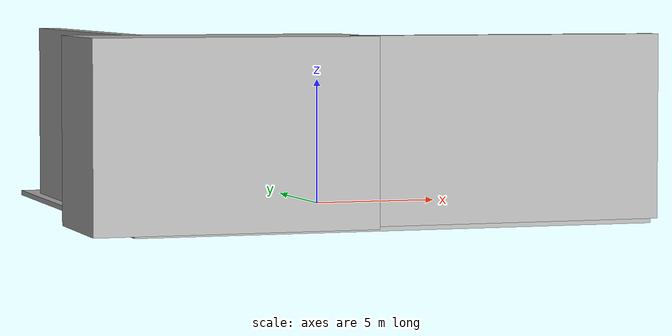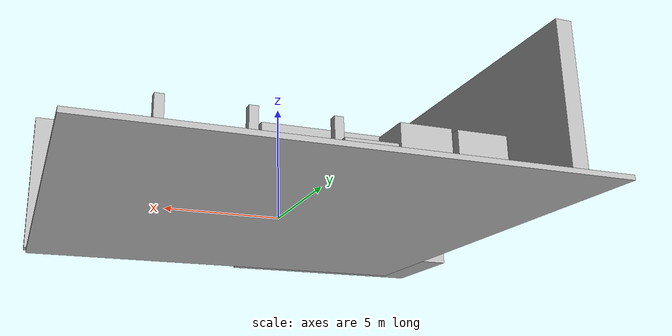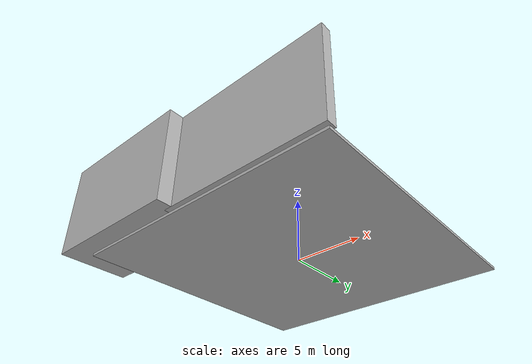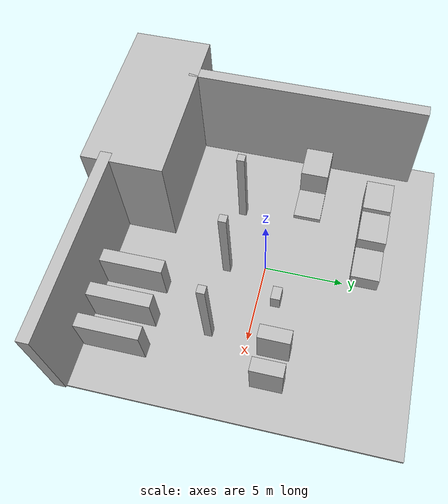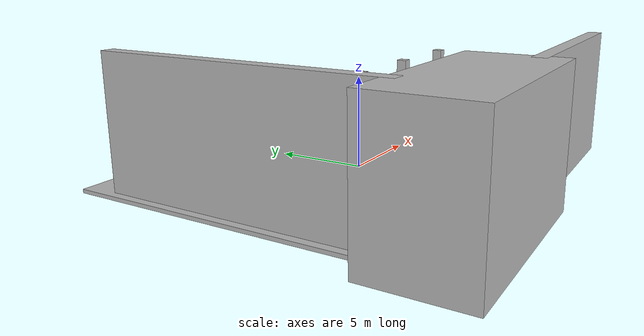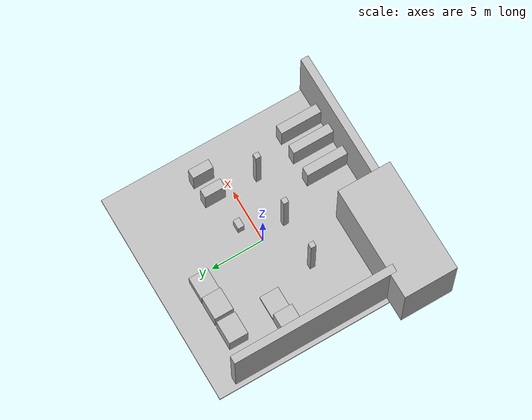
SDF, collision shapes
<?xml version="1.0"?>
<sdf version='1.9'>
  <model name='workcell'>
    <static>true</static>
    <link name='link'>
      <visual name='visual'>
        <geometry>
          <mesh>
            <uri>model://workcell/meshes/mesh.dae</uri>
          </mesh>
        </geometry>
      </visual>
      <collision name='floor'>
        <pose>0 0 -0.1 0 -0 0</pose>
        <geometry>
          <box>
            <size>20.1026 20.1026 0.2</size>
          </box>
        </geometry>
        <surface>
          <contact>
            <ode>
              <max_vel>0</max_vel>
              <min_depth>0.001</min_depth>
            </ode>
          </contact>
          <bounce/>
          <friction>
            <torsional>
              <ode/>
            </torsional>
            <ode/>
          </friction>
        </surface>
        <max_contacts>10</max_contacts>
      </collision>
      <collision name='wall1'>
        <pose>4.13686 -10.0212 3.48855 0 -0 0</pose>
        <geometry>
          <box>
            <size>12.0768 0.72902 6.97771</size>
          </box>
        </geometry>
        <max_contacts>10</max_contacts>
        <surface>
          <contact>
            <ode/>
          </contact>
          <bounce/>
          <friction>
            <torsional>
              <ode/>
            </torsional>
            <ode/>
          </friction>
        </surface>
      </collision>
      <collision name='wall2'>
        <pose>-6.58151 -8.924 3.48855 0 -0 0</pose>
        <geometry>
          <box>
            <size>10.5921 5.00198 6.97771</size>
          </box>
        </geometry>
        <max_contacts>10</max_contacts>
        <surface>
          <contact>
            <ode/>
          </contact>
          <bounce/>
          <friction>
            <torsional>
              <ode/>
            </torsional>
            <ode/>
          </friction>
        </surface>
      </collision>
      <collision name='wall3'>
        <pose>-9.25721 0.6135 3.48855 0 -0 0</pose>
        <geometry>
          <box>
            <size>0.72902 15.2908 6.97771</size>
          </box>
        </geometry>
        <max_contacts>10</max_contacts>
        <surface>
          <contact>
            <ode/>
          </contact>
          <bounce/>
          <friction>
            <torsional>
              <ode/>
            </torsional>
            <ode/>
          </friction>
        </surface>
      </collision>
      <collision name='rack1'>
        <pose>7.35056 1.7443 1.41643 0 -0 0</pose>
        <geometry>
          <box>
            <size>0.84444 1.95581 2.83286</size>
          </box>
        </geometry>
        <max_contacts>10</max_contacts>
        <surface>
          <contact>
            <ode/>
          </contact>
          <bounce/>
          <friction>
            <torsional>
              <ode/>
            </torsional>
            <ode/>
          </friction>
        </surface>
      </collision>
      <collision name='rack2'>
        <pose>5.36795 1.7443 1.41643 0 -0 0</pose>
        <geometry>
          <box>
            <size>0.84444 1.95581 2.83286</size>
          </box>
        </geometry>
        <max_contacts>10</max_contacts>
        <surface>
          <contact>
            <ode/>
          </contact>
          <bounce/>
          <friction>
            <torsional>
              <ode/>
            </torsional>
            <ode/>
          </friction>
        </surface>
      </collision>
      <collision name='rack3'>
        <pose>7.00142 -7.6467 1.41643 0 -0 0</pose>
        <geometry>
          <box>
            <size>0.84444 3.91162 2.83286</size>
          </box>
        </geometry>
        <max_contacts>10</max_contacts>
        <surface>
          <contact>
            <ode/>
          </contact>
          <bounce/>
          <friction>
            <torsional>
              <ode/>
            </torsional>
            <ode/>
          </friction>
        </surface>
      </collision>
      <collision name='rack4'>
        <pose>4.97338 -7.6467 1.41643 0 -0 0</pose>
        <geometry>
          <box>
            <size>0.84444 3.91162 2.83286</size>
          </box>
        </geometry>
        <max_contacts>10</max_contacts>
        <surface>
          <contact>
            <ode/>
          </contact>
          <bounce/>
          <friction>
            <torsional>
              <ode/>
            </torsional>
            <ode/>
          </friction>
        </surface>
      </collision>
      <collision name='rack5'>
        <pose>2.66949 -7.6467 1.41643 0 -0 0</pose>
        <geometry>
          <box>
            <size>0.84444 3.91162 2.83286</size>
          </box>
        </geometry>
        <max_contacts>10</max_contacts>
        <surface>
          <contact>
            <ode/>
          </contact>
          <bounce/>
          <friction>
            <torsional>
              <ode/>
            </torsional>
            <ode/>
          </friction>
        </surface>
      </collision>
      <collision name='large_pallet1'>
        <pose>-3.33609 6.31883 1.04257 0 -0 0</pose>
        <geometry>
          <box>
            <size>2.14726 1.79349 2.08514</size>
          </box>
        </geometry>
        <max_contacts>10</max_contacts>
        <surface>
          <contact>
            <ode/>
          </contact>
          <bounce/>
          <friction>
            <torsional>
              <ode/>
            </torsional>
            <ode/>
          </friction>
        </surface>
      </collision>
      <collision name='large_pallet2'>
        <pose>-5.74492 6.31883 1.04257 0 -0 0</pose>
        <geometry>
          <box>
            <size>2.14726 1.79349 2.08514</size>
          </box>
        </geometry>
        <max_contacts>10</max_contacts>
        <surface>
          <contact>
            <ode/>
          </contact>
          <bounce/>
          <friction>
            <torsional>
              <ode/>
            </torsional>
            <ode/>
          </friction>
        </surface>
      </collision>
      <collision name='large_pallet3'>
        <pose>-7.55868 1.91644 1.04257 0 -0 0</pose>
        <geometry>
          <box>
            <size>2.14726 1.79432 2.08514</size>
          </box>
        </geometry>
        <max_contacts>10</max_contacts>
        <surface>
          <contact>
            <ode/>
          </contact>
          <bounce/>
          <friction>
            <torsional>
              <ode/>
            </torsional>
            <ode/>
          </friction>
        </surface>
      </collision>
      <collision name='empty_pallet1'>
        <pose>-5.29667 1.91644 0.1636 0 -0 0</pose>
        <geometry>
          <box>
            <size>2.14726 1.79349 0.3272</size>
          </box>
        </geometry>
        <max_contacts>10</max_contacts>
        <surface>
          <contact>
            <ode/>
          </contact>
          <bounce/>
          <friction>
            <torsional>
              <ode/>
            </torsional>
            <ode/>
          </friction>
        </surface>
      </collision>
      <collision name='box_pallet1'>
        <pose>-1.09806 6.31883 0.61958 0 -0 0</pose>
        <geometry>
          <box>
            <size>2.14726 1.79349 1.23916</size>
          </box>
        </geometry>
        <max_contacts>10</max_contacts>
        <surface>
          <contact>
            <ode/>
          </contact>
          <bounce/>
          <friction>
            <torsional>
              <ode/>
            </torsional>
            <ode/>
          </friction>
        </surface>
      </collision>
      <collision name='pole1'>
        <pose>5.02174 -2.39478 3.02208 0 -0 0</pose>
        <geometry>
          <box>
            <size>0.49161 0.49161 6.04415</size>
          </box>
        </geometry>
        <max_contacts>10</max_contacts>
        <surface>
          <contact>
            <ode/>
          </contact>
          <bounce/>
          <friction>
            <torsional>
              <ode/>
            </torsional>
            <ode/>
          </friction>
        </surface>
      </collision>
      <collision name='pole2'>
        <pose>0.47071 -2.39478 3.02208 0 -0 0</pose>
        <geometry>
          <box>
            <size>0.49161 0.49161 6.04415</size>
          </box>
        </geometry>
        <max_contacts>10</max_contacts>
        <surface>
          <contact>
            <ode/>
          </contact>
          <bounce/>
          <friction>
            <torsional>
              <ode/>
            </torsional>
            <ode/>
          </friction>
        </surface>
      </collision>
      <collision name='pole3'>
        <pose>-3.93786 -2.39478 3.02208 0 -0 0</pose>
        <geometry>
          <box>
            <size>0.49161 0.49161 6.04415</size>
          </box>
        </geometry>
        <max_contacts>10</max_contacts>
        <surface>
          <contact>
            <ode/>
          </contact>
          <bounce/>
          <friction>
            <torsional>
              <ode/>
            </torsional>
            <ode/>
          </friction>
        </surface>
      </collision>
      <collision name='control_panel'>
        <pose>2.07015 1.16224 0.561315 0 -0 0</pose>
        <geometry>
          <box>
            <size>0.86733 0.6001 1.12263</size>
          </box>
        </geometry>
        <max_contacts>10</max_contacts>
        <surface>
          <contact>
            <ode/>
          </contact>
          <bounce/>
          <friction>
            <torsional>
              <ode/>
            </torsional>
            <ode/>
          </friction>
        </surface>
      </collision>
      <self_collide>false</self_collide>
      <enable_wind>false</enable_wind>
      <kinematic>false</kinematic>
    </link>
  </model>
</sdf>
